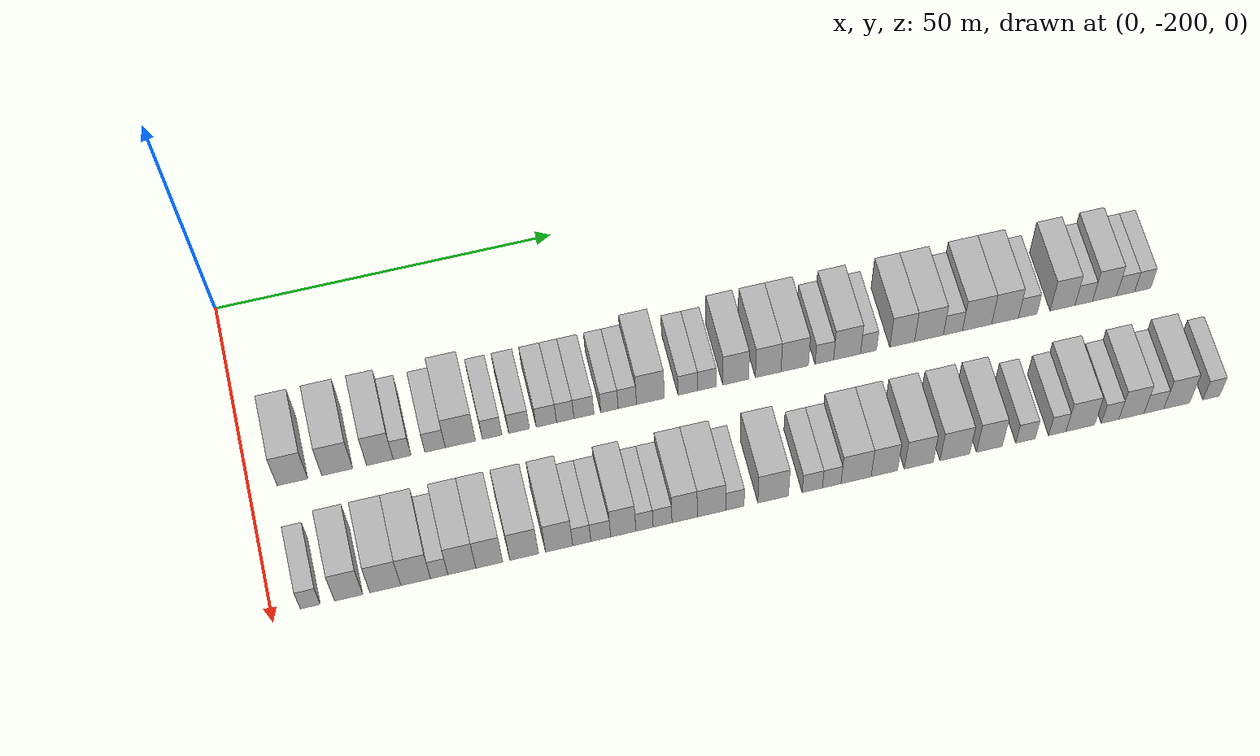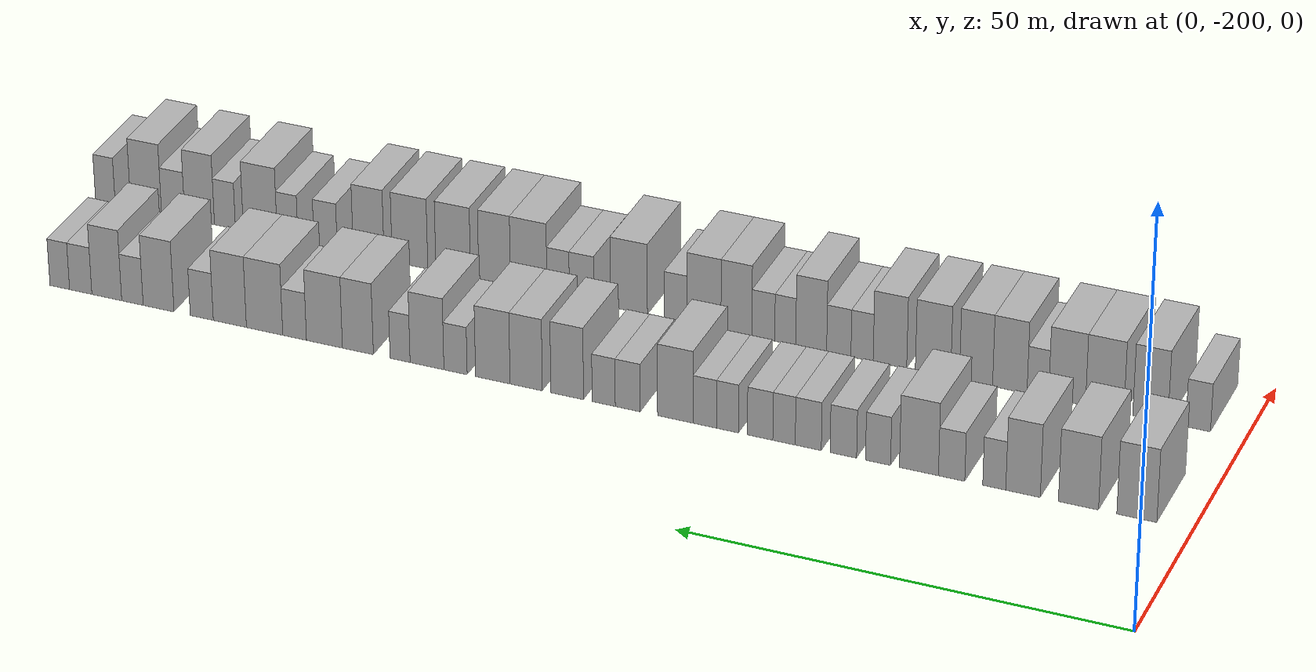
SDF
<sdf version="1.6">
 <world name="default">
  <model name="building_1">
   <static>1</static>
   <pose>25.0000 -193.8158 0 0.000000 0.000000 0.000000</pose>
   <link name="link">
    <pose>0 0 4.50 0 0 0</pose>
    <collision name="collision"><geometry><box><size>10.0000 4.3684 9.0000</size></box></geometry></collision>
    <visual name="visual">
     <cast_shadows>0</cast_shadows>
     <geometry><box><size>10.0000 4.3684 9.0000</size></box></geometry>
     <material>
      <script>
       <uri>model://HANNAS_wall/materials/scripts</uri>
       <uri>model://HANNAS_wall/materials/textures</uri>
       <name>vrc/HANNAS_wall</name>
      </script>
     </material>
    </visual>
   </link>
  </model>
  <model name="building_2">
   <static>1</static>
   <pose>25.0000 -187.4252 0 0.000000 0.000000 0.000000</pose>
   <link name="link">
    <pose>0 0 4.50 0 0 0</pose>
    <collision name="collision"><geometry><box><size>10.0000 4.4127 9.0000</size></box></geometry></collision>
    <visual name="visual">
     <cast_shadows>0</cast_shadows>
     <geometry><box><size>10.0000 4.4127 9.0000</size></box></geometry>
     <material>
      <script>
       <uri>model://HANNAS_wall/materials/scripts</uri>
       <uri>model://HANNAS_wall/materials/textures</uri>
       <name>vrc/HANNAS_wall</name>
      </script>
     </material>
    </visual>
   </link>
  </model>
  <model name="building_3">
   <static>1</static>
   <pose>25.0000 -181.3065 0 0.000000 0.000000 0.000000</pose>
   <link name="link">
    <pose>0 0 4.50 0 0 0</pose>
    <collision name="collision"><geometry><box><size>10.0000 3.8246 9.0000</size></box></geometry></collision>
    <visual name="visual">
     <cast_shadows>0</cast_shadows>
     <geometry><box><size>10.0000 3.8246 9.0000</size></box></geometry>
     <material>
      <script>
       <uri>model://HANNAS_wall/materials/scripts</uri>
       <uri>model://HANNAS_wall/materials/textures</uri>
       <name>vrc/HANNAS_wall</name>
      </script>
     </material>
    </visual>
   </link>
  </model>
  <model name="building_4">
   <static>1</static>
   <pose>25.0000 -178.1168 0 0.000000 0.000000 0.000000</pose>
   <link name="link">
    <pose>0 0 3.00 0 0 0</pose>
    <collision name="collision"><geometry><box><size>10.0000 2.5548 6.0000</size></box></geometry></collision>
    <visual name="visual">
     <cast_shadows>0</cast_shadows>
     <geometry><box><size>10.0000 2.5548 6.0000</size></box></geometry>
     <material>
      <script>
       <uri>model://HANNAS_wall/materials/scripts</uri>
       <uri>model://HANNAS_wall/materials/textures</uri>
       <name>vrc/HANNAS_wall</name>
      </script>
     </material>
    </visual>
   </link>
  </model>
  <model name="building_5">
   <static>1</static>
   <pose>25.0000 -173.3668 0 0.000000 0.000000 0.000000</pose>
   <link name="link">
    <pose>0 0 3.00 0 0 0</pose>
    <collision name="collision"><geometry><box><size>10.0000 2.9451 6.0000</size></box></geometry></collision>
    <visual name="visual">
     <cast_shadows>0</cast_shadows>
     <geometry><box><size>10.0000 2.9451 6.0000</size></box></geometry>
     <material>
      <script>
       <uri>model://HANNAS_wall/materials/scripts</uri>
       <uri>model://HANNAS_wall/materials/textures</uri>
       <name>vrc/HANNAS_wall</name>
      </script>
     </material>
    </visual>
   </link>
  </model>
  <model name="building_6">
   <static>1</static>
   <pose>25.0000 -169.7110 0 0.000000 0.000000 0.000000</pose>
   <link name="link">
    <pose>0 0 4.50 0 0 0</pose>
    <collision name="collision"><geometry><box><size>10.0000 4.3665 9.0000</size></box></geometry></collision>
    <visual name="visual">
     <cast_shadows>0</cast_shadows>
     <geometry><box><size>10.0000 4.3665 9.0000</size></box></geometry>
     <material>
      <script>
       <uri>model://HANNAS_wall/materials/scripts</uri>
       <uri>model://HANNAS_wall/materials/textures</uri>
       <name>vrc/HANNAS_wall</name>
      </script>
     </material>
    </visual>
   </link>
  </model>
  <model name="building_7">
   <static>1</static>
   <pose>25.0000 -165.1141 0 0.000000 0.000000 0.000000</pose>
   <link name="link">
    <pose>0 0 3.00 0 0 0</pose>
    <collision name="collision"><geometry><box><size>10.0000 2.8274 6.0000</size></box></geometry></collision>
    <visual name="visual">
     <cast_shadows>0</cast_shadows>
     <geometry><box><size>10.0000 2.8274 6.0000</size></box></geometry>
     <material>
      <script>
       <uri>model://HANNAS_wall/materials/scripts</uri>
       <uri>model://HANNAS_wall/materials/textures</uri>
       <name>vrc/HANNAS_wall</name>
      </script>
     </material>
    </visual>
   </link>
  </model>
  <model name="building_8">
   <static>1</static>
   <pose>25.0000 -161.2014 0 0.000000 0.000000 0.000000</pose>
   <link name="link">
    <pose>0 0 3.00 0 0 0</pose>
    <collision name="collision"><geometry><box><size>10.0000 2.9981 6.0000</size></box></geometry></collision>
    <visual name="visual">
     <cast_shadows>0</cast_shadows>
     <geometry><box><size>10.0000 2.9981 6.0000</size></box></geometry>
     <material>
      <script>
       <uri>model://HANNAS_wall/materials/scripts</uri>
       <uri>model://HANNAS_wall/materials/textures</uri>
       <name>vrc/HANNAS_wall</name>
      </script>
     </material>
    </visual>
   </link>
  </model>
  <model name="building_9">
   <static>1</static>
   <pose>25.0000 -157.2229 0 0.000000 0.000000 0.000000</pose>
   <link name="link">
    <pose>0 0 3.00 0 0 0</pose>
    <collision name="collision"><geometry><box><size>10.0000 2.9589 6.0000</size></box></geometry></collision>
    <visual name="visual">
     <cast_shadows>0</cast_shadows>
     <geometry><box><size>10.0000 2.9589 6.0000</size></box></geometry>
     <material>
      <script>
       <uri>model://HANNAS_wall/materials/scripts</uri>
       <uri>model://HANNAS_wall/materials/textures</uri>
       <name>vrc/HANNAS_wall</name>
      </script>
     </material>
    </visual>
   </link>
  </model>
  <model name="building_10">
   <static>1</static>
   <pose>25.0000 -154.4646 0 0.000000 0.000000 0.000000</pose>
   <link name="link">
    <pose>0 0 3.00 0 0 0</pose>
    <collision name="collision"><geometry><box><size>10.0000 2.5576 6.0000</size></box></geometry></collision>
    <visual name="visual">
     <cast_shadows>0</cast_shadows>
     <geometry><box><size>10.0000 2.5576 6.0000</size></box></geometry>
     <material>
      <script>
       <uri>model://HANNAS_wall/materials/scripts</uri>
       <uri>model://HANNAS_wall/materials/textures</uri>
       <name>vrc/HANNAS_wall</name>
      </script>
     </material>
    </visual>
   </link>
  </model>
  <model name="building_11">
   <static>1</static>
   <pose>25.0000 -151.7313 0 0.000000 0.000000 0.000000</pose>
   <link name="link">
    <pose>0 0 3.00 0 0 0</pose>
    <collision name="collision"><geometry><box><size>10.0000 2.9090 6.0000</size></box></geometry></collision>
    <visual name="visual">
     <cast_shadows>0</cast_shadows>
     <geometry><box><size>10.0000 2.9090 6.0000</size></box></geometry>
     <material>
      <script>
       <uri>model://HANNAS_wall/materials/scripts</uri>
       <uri>model://HANNAS_wall/materials/textures</uri>
       <name>vrc/HANNAS_wall</name>
      </script>
     </material>
    </visual>
   </link>
  </model>
  <model name="building_12">
   <static>1</static>
   <pose>25.0000 -148.0010 0 0.000000 0.000000 0.000000</pose>
   <link name="link">
    <pose>0 0 3.00 0 0 0</pose>
    <collision name="collision"><geometry><box><size>10.0000 2.5517 6.0000</size></box></geometry></collision>
    <visual name="visual">
     <cast_shadows>0</cast_shadows>
     <geometry><box><size>10.0000 2.5517 6.0000</size></box></geometry>
     <material>
      <script>
       <uri>model://HANNAS_wall/materials/scripts</uri>
       <uri>model://HANNAS_wall/materials/textures</uri>
       <name>vrc/HANNAS_wall</name>
      </script>
     </material>
    </visual>
   </link>
  </model>
  <model name="building_13">
   <static>1</static>
   <pose>25.0000 -145.3806 0 0.000000 0.000000 0.000000</pose>
   <link name="link">
    <pose>0 0 3.00 0 0 0</pose>
    <collision name="collision"><geometry><box><size>10.0000 2.6890 6.0000</size></box></geometry></collision>
    <visual name="visual">
     <cast_shadows>0</cast_shadows>
     <geometry><box><size>10.0000 2.6890 6.0000</size></box></geometry>
     <material>
      <script>
       <uri>model://HANNAS_wall/materials/scripts</uri>
       <uri>model://HANNAS_wall/materials/textures</uri>
       <name>vrc/HANNAS_wall</name>
      </script>
     </material>
    </visual>
   </link>
  </model>
  <model name="building_14">
   <static>1</static>
   <pose>25.0000 -141.9866 0 0.000000 0.000000 0.000000</pose>
   <link name="link">
    <pose>0 0 4.50 0 0 0</pose>
    <collision name="collision"><geometry><box><size>10.0000 4.0990 9.0000</size></box></geometry></collision>
    <visual name="visual">
     <cast_shadows>0</cast_shadows>
     <geometry><box><size>10.0000 4.0990 9.0000</size></box></geometry>
     <material>
      <script>
       <uri>model://HANNAS_wall/materials/scripts</uri>
       <uri>model://HANNAS_wall/materials/textures</uri>
       <name>vrc/HANNAS_wall</name>
      </script>
     </material>
    </visual>
   </link>
  </model>
  <model name="building_15">
   <static>1</static>
   <pose>25.0000 -136.4802 0 0.000000 0.000000 0.000000</pose>
   <link name="link">
    <pose>0 0 3.00 0 0 0</pose>
    <collision name="collision"><geometry><box><size>10.0000 2.9137 6.0000</size></box></geometry></collision>
    <visual name="visual">
     <cast_shadows>0</cast_shadows>
     <geometry><box><size>10.0000 2.9137 6.0000</size></box></geometry>
     <material>
      <script>
       <uri>model://HANNAS_wall/materials/scripts</uri>
       <uri>model://HANNAS_wall/materials/textures</uri>
       <name>vrc/HANNAS_wall</name>
      </script>
     </material>
    </visual>
   </link>
  </model>
  <model name="building_16">
   <static>1</static>
   <pose>25.0000 -133.6682 0 0.000000 0.000000 0.000000</pose>
   <link name="link">
    <pose>0 0 3.00 0 0 0</pose>
    <collision name="collision"><geometry><box><size>10.0000 2.7104 6.0000</size></box></geometry></collision>
    <visual name="visual">
     <cast_shadows>0</cast_shadows>
     <geometry><box><size>10.0000 2.7104 6.0000</size></box></geometry>
     <material>
      <script>
       <uri>model://HANNAS_wall/materials/scripts</uri>
       <uri>model://HANNAS_wall/materials/textures</uri>
       <name>vrc/HANNAS_wall</name>
      </script>
     </material>
    </visual>
   </link>
  </model>
  <model name="building_17">
   <static>1</static>
   <pose>25.0000 -129.4004 0 0.000000 0.000000 0.000000</pose>
   <link name="link">
    <pose>0 0 4.50 0 0 0</pose>
    <collision name="collision"><geometry><box><size>10.0000 3.8253 9.0000</size></box></geometry></collision>
    <visual name="visual">
     <cast_shadows>0</cast_shadows>
     <geometry><box><size>10.0000 3.8253 9.0000</size></box></geometry>
     <material>
      <script>
       <uri>model://HANNAS_wall/materials/scripts</uri>
       <uri>model://HANNAS_wall/materials/textures</uri>
       <name>vrc/HANNAS_wall</name>
      </script>
     </material>
    </visual>
   </link>
  </model>
  <model name="building_18">
   <static>1</static>
   <pose>25.0000 -124.5874 0 0.000000 0.000000 0.000000</pose>
   <link name="link">
    <pose>0 0 4.50 0 0 0</pose>
    <collision name="collision"><geometry><box><size>10.0000 3.8006 9.0000</size></box></geometry></collision>
    <visual name="visual">
     <cast_shadows>0</cast_shadows>
     <geometry><box><size>10.0000 3.8006 9.0000</size></box></geometry>
     <material>
      <script>
       <uri>model://HANNAS_wall/materials/scripts</uri>
       <uri>model://HANNAS_wall/materials/textures</uri>
       <name>vrc/HANNAS_wall</name>
      </script>
     </material>
    </visual>
   </link>
  </model>
  <model name="building_19">
   <static>1</static>
   <pose>25.0000 -120.6496 0 0.000000 0.000000 0.000000</pose>
   <link name="link">
    <pose>0 0 4.50 0 0 0</pose>
    <collision name="collision"><geometry><box><size>10.0000 4.0750 9.0000</size></box></geometry></collision>
    <visual name="visual">
     <cast_shadows>0</cast_shadows>
     <geometry><box><size>10.0000 4.0750 9.0000</size></box></geometry>
     <material>
      <script>
       <uri>model://HANNAS_wall/materials/scripts</uri>
       <uri>model://HANNAS_wall/materials/textures</uri>
       <name>vrc/HANNAS_wall</name>
      </script>
     </material>
    </visual>
   </link>
  </model>
  <model name="building_20">
   <static>1</static>
   <pose>25.0000 -116.2314 0 0.000000 0.000000 0.000000</pose>
   <link name="link">
    <pose>0 0 3.00 0 0 0</pose>
    <collision name="collision"><geometry><box><size>10.0000 2.7614 6.0000</size></box></geometry></collision>
    <visual name="visual">
     <cast_shadows>0</cast_shadows>
     <geometry><box><size>10.0000 2.7614 6.0000</size></box></geometry>
     <material>
      <script>
       <uri>model://HANNAS_wall/materials/scripts</uri>
       <uri>model://HANNAS_wall/materials/textures</uri>
       <name>vrc/HANNAS_wall</name>
      </script>
     </material>
    </visual>
   </link>
  </model>
  <model name="building_21">
   <static>1</static>
   <pose>25.0000 -112.8315 0 0.000000 0.000000 0.000000</pose>
   <link name="link">
    <pose>0 0 4.50 0 0 0</pose>
    <collision name="collision"><geometry><box><size>10.0000 4.0385 9.0000</size></box></geometry></collision>
    <visual name="visual">
     <cast_shadows>0</cast_shadows>
     <geometry><box><size>10.0000 4.0385 9.0000</size></box></geometry>
     <material>
      <script>
       <uri>model://HANNAS_wall/materials/scripts</uri>
       <uri>model://HANNAS_wall/materials/textures</uri>
       <name>vrc/HANNAS_wall</name>
      </script>
     </material>
    </visual>
   </link>
  </model>
  <model name="building_22">
   <static>1</static>
   <pose>25.0000 -109.6122 0 0.000000 0.000000 0.000000</pose>
   <link name="link">
    <pose>0 0 3.00 0 0 0</pose>
    <collision name="collision"><geometry><box><size>10.0000 2.4001 6.0000</size></box></geometry></collision>
    <visual name="visual">
     <cast_shadows>0</cast_shadows>
     <geometry><box><size>10.0000 2.4001 6.0000</size></box></geometry>
     <material>
      <script>
       <uri>model://HANNAS_wall/materials/scripts</uri>
       <uri>model://HANNAS_wall/materials/textures</uri>
       <name>vrc/HANNAS_wall</name>
      </script>
     </material>
    </visual>
   </link>
  </model>
  <model name="building_23">
   <static>1</static>
   <pose>25.0000 -104.5498 0 0.000000 0.000000 0.000000</pose>
   <link name="link">
    <pose>0 0 4.50 0 0 0</pose>
    <collision name="collision"><geometry><box><size>10.0000 3.7247 9.0000</size></box></geometry></collision>
    <visual name="visual">
     <cast_shadows>0</cast_shadows>
     <geometry><box><size>10.0000 3.7247 9.0000</size></box></geometry>
     <material>
      <script>
       <uri>model://HANNAS_wall/materials/scripts</uri>
       <uri>model://HANNAS_wall/materials/textures</uri>
       <name>vrc/HANNAS_wall</name>
      </script>
     </material>
    </visual>
   </link>
  </model>
  <model name="building_24">
   <static>1</static>
   <pose>25.0000 -100.5147 0 0.000000 0.000000 0.000000</pose>
   <link name="link">
    <pose>0 0 4.50 0 0 0</pose>
    <collision name="collision"><geometry><box><size>10.0000 4.3453 9.0000</size></box></geometry></collision>
    <visual name="visual">
     <cast_shadows>0</cast_shadows>
     <geometry><box><size>10.0000 4.3453 9.0000</size></box></geometry>
     <material>
      <script>
       <uri>model://HANNAS_wall/materials/scripts</uri>
       <uri>model://HANNAS_wall/materials/textures</uri>
       <name>vrc/HANNAS_wall</name>
      </script>
     </material>
    </visual>
   </link>
  </model>
  <model name="building_25">
   <static>1</static>
   <pose>25.0000 -96.9032 0 0.000000 0.000000 0.000000</pose>
   <link name="link">
    <pose>0 0 3.00 0 0 0</pose>
    <collision name="collision"><geometry><box><size>10.0000 2.8777 6.0000</size></box></geometry></collision>
    <visual name="visual">
     <cast_shadows>0</cast_shadows>
     <geometry><box><size>10.0000 2.8777 6.0000</size></box></geometry>
     <material>
      <script>
       <uri>model://HANNAS_wall/materials/scripts</uri>
       <uri>model://HANNAS_wall/materials/textures</uri>
       <name>vrc/HANNAS_wall</name>
      </script>
     </material>
    </visual>
   </link>
  </model>
  <model name="building_26">
   <static>1</static>
   <pose>25.0000 -93.2507 0 0.000000 0.000000 0.000000</pose>
   <link name="link">
    <pose>0 0 4.50 0 0 0</pose>
    <collision name="collision"><geometry><box><size>10.0000 4.4274 9.0000</size></box></geometry></collision>
    <visual name="visual">
     <cast_shadows>0</cast_shadows>
     <geometry><box><size>10.0000 4.4274 9.0000</size></box></geometry>
     <material>
      <script>
       <uri>model://HANNAS_wall/materials/scripts</uri>
       <uri>model://HANNAS_wall/materials/textures</uri>
       <name>vrc/HANNAS_wall</name>
      </script>
     </material>
    </visual>
   </link>
  </model>
  <model name="building_27">
   <static>1</static>
   <pose>25.0000 -89.0107 0 0.000000 0.000000 0.000000</pose>
   <link name="link">
    <pose>0 0 4.50 0 0 0</pose>
    <collision name="collision"><geometry><box><size>10.0000 4.0526 9.0000</size></box></geometry></collision>
    <visual name="visual">
     <cast_shadows>0</cast_shadows>
     <geometry><box><size>10.0000 4.0526 9.0000</size></box></geometry>
     <material>
      <script>
       <uri>model://HANNAS_wall/materials/scripts</uri>
       <uri>model://HANNAS_wall/materials/textures</uri>
       <name>vrc/HANNAS_wall</name>
      </script>
     </material>
    </visual>
   </link>
  </model>
  <model name="building_28">
   <static>1</static>
   <pose>25.0000 -85.5695 0 0.000000 0.000000 0.000000</pose>
   <link name="link">
    <pose>0 0 3.00 0 0 0</pose>
    <collision name="collision"><geometry><box><size>10.0000 2.8299 6.0000</size></box></geometry></collision>
    <visual name="visual">
     <cast_shadows>0</cast_shadows>
     <geometry><box><size>10.0000 2.8299 6.0000</size></box></geometry>
     <material>
      <script>
       <uri>model://HANNAS_wall/materials/scripts</uri>
       <uri>model://HANNAS_wall/materials/textures</uri>
       <name>vrc/HANNAS_wall</name>
      </script>
     </material>
    </visual>
   </link>
  </model>
  <model name="building_29">
   <static>1</static>
   <pose>25.0000 -80.2502 0 0.000000 0.000000 0.000000</pose>
   <link name="link">
    <pose>0 0 4.50 0 0 0</pose>
    <collision name="collision"><geometry><box><size>10.0000 3.8086 9.0000</size></box></geometry></collision>
    <visual name="visual">
     <cast_shadows>0</cast_shadows>
     <geometry><box><size>10.0000 3.8086 9.0000</size></box></geometry>
     <material>
      <script>
       <uri>model://HANNAS_wall/materials/scripts</uri>
       <uri>model://HANNAS_wall/materials/textures</uri>
       <name>vrc/HANNAS_wall</name>
      </script>
     </material>
    </visual>
   </link>
  </model>
  <model name="building_30">
   <static>1</static>
   <pose>25.0000 -77.0159 0 0.000000 0.000000 0.000000</pose>
   <link name="link">
    <pose>0 0 3.00 0 0 0</pose>
    <collision name="collision"><geometry><box><size>10.0000 2.6602 6.0000</size></box></geometry></collision>
    <visual name="visual">
     <cast_shadows>0</cast_shadows>
     <geometry><box><size>10.0000 2.6602 6.0000</size></box></geometry>
     <material>
      <script>
       <uri>model://HANNAS_wall/materials/scripts</uri>
       <uri>model://HANNAS_wall/materials/textures</uri>
       <name>vrc/HANNAS_wall</name>
      </script>
     </material>
    </visual>
   </link>
  </model>
  <model name="building_31">
   <static>1</static>
   <pose>25.0000 -73.8317 0 0.000000 0.000000 0.000000</pose>
   <link name="link">
    <pose>0 0 4.50 0 0 0</pose>
    <collision name="collision"><geometry><box><size>10.0000 3.7082 9.0000</size></box></geometry></collision>
    <visual name="visual">
     <cast_shadows>0</cast_shadows>
     <geometry><box><size>10.0000 3.7082 9.0000</size></box></geometry>
     <material>
      <script>
       <uri>model://HANNAS_wall/materials/scripts</uri>
       <uri>model://HANNAS_wall/materials/textures</uri>
       <name>vrc/HANNAS_wall</name>
      </script>
     </material>
    </visual>
   </link>
  </model>
  <model name="building_32">
   <static>1</static>
   <pose>25.0000 -70.5869 0 0.000000 0.000000 0.000000</pose>
   <link name="link">
    <pose>0 0 3.00 0 0 0</pose>
    <collision name="collision"><geometry><box><size>10.0000 2.7813 6.0000</size></box></geometry></collision>
    <visual name="visual">
     <cast_shadows>0</cast_shadows>
     <geometry><box><size>10.0000 2.7813 6.0000</size></box></geometry>
     <material>
      <script>
       <uri>model://HANNAS_wall/materials/scripts</uri>
       <uri>model://HANNAS_wall/materials/textures</uri>
       <name>vrc/HANNAS_wall</name>
      </script>
     </material>
    </visual>
   </link>
  </model>
  <model name="building_33">
   <static>1</static>
   <pose>25.0000 -67.9731 0 0.000000 0.000000 0.000000</pose>
   <link name="link">
    <pose>0 0 3.00 0 0 0</pose>
    <collision name="collision"><geometry><box><size>10.0000 2.4463 6.0000</size></box></geometry></collision>
    <visual name="visual">
     <cast_shadows>0</cast_shadows>
     <geometry><box><size>10.0000 2.4463 6.0000</size></box></geometry>
     <material>
      <script>
       <uri>model://HANNAS_wall/materials/scripts</uri>
       <uri>model://HANNAS_wall/materials/textures</uri>
       <name>vrc/HANNAS_wall</name>
      </script>
     </material>
    </visual>
   </link>
  </model>
  <model name="building_99">
   <static>1</static>
   <pose>44.0000 -194.6192 0 0.000000 0.000000 0.000000</pose>
   <link name="link">
    <pose>0 0 3.00 0 0 0</pose>
    <collision name="collision"><geometry><box><size>10.0000 2.7616 6.0000</size></box></geometry></collision>
    <visual name="visual">
     <cast_shadows>0</cast_shadows>
     <geometry><box><size>10.0000 2.7616 6.0000</size></box></geometry>
     <material>
      <script>
       <uri>model://HANNAS_wall/materials/scripts</uri>
       <uri>model://HANNAS_wall/materials/textures</uri>
       <name>vrc/HANNAS_wall</name>
      </script>
     </material>
    </visual>
   </link>
  </model>
  <model name="building_100">
   <static>1</static>
   <pose>44.0000 -189.2688 0 0.000000 0.000000 0.000000</pose>
   <link name="link">
    <pose>0 0 4.50 0 0 0</pose>
    <collision name="collision"><geometry><box><size>10.0000 3.9391 9.0000</size></box></geometry></collision>
    <visual name="visual">
     <cast_shadows>0</cast_shadows>
     <geometry><box><size>10.0000 3.9391 9.0000</size></box></geometry>
     <material>
      <script>
       <uri>model://HANNAS_wall/materials/scripts</uri>
       <uri>model://HANNAS_wall/materials/textures</uri>
       <name>vrc/HANNAS_wall</name>
      </script>
     </material>
    </visual>
   </link>
  </model>
  <model name="building_101">
   <static>1</static>
   <pose>44.0000 -184.1315 0 0.000000 0.000000 0.000000</pose>
   <link name="link">
    <pose>0 0 4.50 0 0 0</pose>
    <collision name="collision"><geometry><box><size>10.0000 4.3356 9.0000</size></box></geometry></collision>
    <visual name="visual">
     <cast_shadows>0</cast_shadows>
     <geometry><box><size>10.0000 4.3356 9.0000</size></box></geometry>
     <material>
      <script>
       <uri>model://HANNAS_wall/materials/scripts</uri>
       <uri>model://HANNAS_wall/materials/textures</uri>
       <name>vrc/HANNAS_wall</name>
      </script>
     </material>
    </visual>
   </link>
  </model>
  <model name="building_102">
   <static>1</static>
   <pose>44.0000 -179.8727 0 0.000000 0.000000 0.000000</pose>
   <link name="link">
    <pose>0 0 4.50 0 0 0</pose>
    <collision name="collision"><geometry><box><size>10.0000 4.1820 9.0000</size></box></geometry></collision>
    <visual name="visual">
     <cast_shadows>0</cast_shadows>
     <geometry><box><size>10.0000 4.1820 9.0000</size></box></geometry>
     <material>
      <script>
       <uri>model://HANNAS_wall/materials/scripts</uri>
       <uri>model://HANNAS_wall/materials/textures</uri>
       <name>vrc/HANNAS_wall</name>
      </script>
     </material>
    </visual>
   </link>
  </model>
  <model name="building_103">
   <static>1</static>
   <pose>44.0000 -176.5561 0 0.000000 0.000000 0.000000</pose>
   <link name="link">
    <pose>0 0 3.00 0 0 0</pose>
    <collision name="collision"><geometry><box><size>10.0000 2.4511 6.0000</size></box></geometry></collision>
    <visual name="visual">
     <cast_shadows>0</cast_shadows>
     <geometry><box><size>10.0000 2.4511 6.0000</size></box></geometry>
     <material>
      <script>
       <uri>model://HANNAS_wall/materials/scripts</uri>
       <uri>model://HANNAS_wall/materials/textures</uri>
       <name>vrc/HANNAS_wall</name>
      </script>
     </material>
    </visual>
   </link>
  </model>
  <model name="building_104">
   <static>1</static>
   <pose>44.0000 -173.3631 0 0.000000 0.000000 0.000000</pose>
   <link name="link">
    <pose>0 0 4.50 0 0 0</pose>
    <collision name="collision"><geometry><box><size>10.0000 3.9349 9.0000</size></box></geometry></collision>
    <visual name="visual">
     <cast_shadows>0</cast_shadows>
     <geometry><box><size>10.0000 3.9349 9.0000</size></box></geometry>
     <material>
      <script>
       <uri>model://HANNAS_wall/materials/scripts</uri>
       <uri>model://HANNAS_wall/materials/textures</uri>
       <name>vrc/HANNAS_wall</name>
      </script>
     </material>
    </visual>
   </link>
  </model>
  <model name="building_105">
   <static>1</static>
   <pose>44.0000 -169.4930 0 0.000000 0.000000 0.000000</pose>
   <link name="link">
    <pose>0 0 4.50 0 0 0</pose>
    <collision name="collision"><geometry><box><size>10.0000 3.8055 9.0000</size></box></geometry></collision>
    <visual name="visual">
     <cast_shadows>0</cast_shadows>
     <geometry><box><size>10.0000 3.8055 9.0000</size></box></geometry>
     <material>
      <script>
       <uri>model://HANNAS_wall/materials/scripts</uri>
       <uri>model://HANNAS_wall/materials/textures</uri>
       <name>vrc/HANNAS_wall</name>
      </script>
     </material>
    </visual>
   </link>
  </model>
  <model name="building_106">
   <static>1</static>
   <pose>44.0000 -164.5534 0 0.000000 0.000000 0.000000</pose>
   <link name="link">
    <pose>0 0 4.50 0 0 0</pose>
    <collision name="collision"><geometry><box><size>10.0000 4.0736 9.0000</size></box></geometry></collision>
    <visual name="visual">
     <cast_shadows>0</cast_shadows>
     <geometry><box><size>10.0000 4.0736 9.0000</size></box></geometry>
     <material>
      <script>
       <uri>model://HANNAS_wall/materials/scripts</uri>
       <uri>model://HANNAS_wall/materials/textures</uri>
       <name>vrc/HANNAS_wall</name>
      </script>
     </material>
    </visual>
   </link>
  </model>
  <model name="building_107">
   <static>1</static>
   <pose>44.0000 -159.5741 0 0.000000 0.000000 0.000000</pose>
   <link name="link">
    <pose>0 0 4.50 0 0 0</pose>
    <collision name="collision"><geometry><box><size>10.0000 3.8849 9.0000</size></box></geometry></collision>
    <visual name="visual">
     <cast_shadows>0</cast_shadows>
     <geometry><box><size>10.0000 3.8849 9.0000</size></box></geometry>
     <material>
      <script>
       <uri>model://HANNAS_wall/materials/scripts</uri>
       <uri>model://HANNAS_wall/materials/textures</uri>
       <name>vrc/HANNAS_wall</name>
      </script>
     </material>
    </visual>
   </link>
  </model>
  <model name="building_108">
   <static>1</static>
   <pose>44.0000 -156.3396 0 0.000000 0.000000 0.000000</pose>
   <link name="link">
    <pose>0 0 3.00 0 0 0</pose>
    <collision name="collision"><geometry><box><size>10.0000 2.5842 6.0000</size></box></geometry></collision>
    <visual name="visual">
     <cast_shadows>0</cast_shadows>
     <geometry><box><size>10.0000 2.5842 6.0000</size></box></geometry>
     <material>
      <script>
       <uri>model://HANNAS_wall/materials/scripts</uri>
       <uri>model://HANNAS_wall/materials/textures</uri>
       <name>vrc/HANNAS_wall</name>
      </script>
     </material>
    </visual>
   </link>
  </model>
  <model name="building_109">
   <static>1</static>
   <pose>44.0000 -153.6319 0 0.000000 0.000000 0.000000</pose>
   <link name="link">
    <pose>0 0 3.00 0 0 0</pose>
    <collision name="collision"><geometry><box><size>10.0000 2.8313 6.0000</size></box></geometry></collision>
    <visual name="visual">
     <cast_shadows>0</cast_shadows>
     <geometry><box><size>10.0000 2.8313 6.0000</size></box></geometry>
     <material>
      <script>
       <uri>model://HANNAS_wall/materials/scripts</uri>
       <uri>model://HANNAS_wall/materials/textures</uri>
       <name>vrc/HANNAS_wall</name>
      </script>
     </material>
    </visual>
   </link>
  </model>
  <model name="building_110">
   <static>1</static>
   <pose>44.0000 -150.4083 0 0.000000 0.000000 0.000000</pose>
   <link name="link">
    <pose>0 0 4.50 0 0 0</pose>
    <collision name="collision"><geometry><box><size>10.0000 3.6159 9.0000</size></box></geometry></collision>
    <visual name="visual">
     <cast_shadows>0</cast_shadows>
     <geometry><box><size>10.0000 3.6159 9.0000</size></box></geometry>
     <material>
      <script>
       <uri>model://HANNAS_wall/materials/scripts</uri>
       <uri>model://HANNAS_wall/materials/textures</uri>
       <name>vrc/HANNAS_wall</name>
      </script>
     </material>
    </visual>
   </link>
  </model>
  <model name="building_111">
   <static>1</static>
   <pose>44.0000 -147.3682 0 0.000000 0.000000 0.000000</pose>
   <link name="link">
    <pose>0 0 3.00 0 0 0</pose>
    <collision name="collision"><geometry><box><size>10.0000 2.4643 6.0000</size></box></geometry></collision>
    <visual name="visual">
     <cast_shadows>0</cast_shadows>
     <geometry><box><size>10.0000 2.4643 6.0000</size></box></geometry>
     <material>
      <script>
       <uri>model://HANNAS_wall/materials/scripts</uri>
       <uri>model://HANNAS_wall/materials/textures</uri>
       <name>vrc/HANNAS_wall</name>
      </script>
     </material>
    </visual>
   </link>
  </model>
  <model name="building_112">
   <static>1</static>
   <pose>44.0000 -144.7877 0 0.000000 0.000000 0.000000</pose>
   <link name="link">
    <pose>0 0 3.00 0 0 0</pose>
    <collision name="collision"><geometry><box><size>10.0000 2.6968 6.0000</size></box></geometry></collision>
    <visual name="visual">
     <cast_shadows>0</cast_shadows>
     <geometry><box><size>10.0000 2.6968 6.0000</size></box></geometry>
     <material>
      <script>
       <uri>model://HANNAS_wall/materials/scripts</uri>
       <uri>model://HANNAS_wall/materials/textures</uri>
       <name>vrc/HANNAS_wall</name>
      </script>
     </material>
    </visual>
   </link>
  </model>
  <model name="building_113">
   <static>1</static>
   <pose>44.0000 -141.6144 0 0.000000 0.000000 0.000000</pose>
   <link name="link">
    <pose>0 0 4.50 0 0 0</pose>
    <collision name="collision"><geometry><box><size>10.0000 3.6499 9.0000</size></box></geometry></collision>
    <visual name="visual">
     <cast_shadows>0</cast_shadows>
     <geometry><box><size>10.0000 3.6499 9.0000</size></box></geometry>
     <material>
      <script>
       <uri>model://HANNAS_wall/materials/scripts</uri>
       <uri>model://HANNAS_wall/materials/textures</uri>
       <name>vrc/HANNAS_wall</name>
      </script>
     </material>
    </visual>
   </link>
  </model>
  <model name="building_114">
   <static>1</static>
   <pose>44.0000 -137.7563 0 0.000000 0.000000 0.000000</pose>
   <link name="link">
    <pose>0 0 4.50 0 0 0</pose>
    <collision name="collision"><geometry><box><size>10.0000 4.0663 9.0000</size></box></geometry></collision>
    <visual name="visual">
     <cast_shadows>0</cast_shadows>
     <geometry><box><size>10.0000 4.0663 9.0000</size></box></geometry>
     <material>
      <script>
       <uri>model://HANNAS_wall/materials/scripts</uri>
       <uri>model://HANNAS_wall/materials/textures</uri>
       <name>vrc/HANNAS_wall</name>
      </script>
     </material>
    </visual>
   </link>
  </model>
  <model name="building_115">
   <static>1</static>
   <pose>44.0000 -134.3858 0 0.000000 0.000000 0.000000</pose>
   <link name="link">
    <pose>0 0 3.00 0 0 0</pose>
    <collision name="collision"><geometry><box><size>10.0000 2.6746 6.0000</size></box></geometry></collision>
    <visual name="visual">
     <cast_shadows>0</cast_shadows>
     <geometry><box><size>10.0000 2.6746 6.0000</size></box></geometry>
     <material>
      <script>
       <uri>model://HANNAS_wall/materials/scripts</uri>
       <uri>model://HANNAS_wall/materials/textures</uri>
       <name>vrc/HANNAS_wall</name>
      </script>
     </material>
    </visual>
   </link>
  </model>
  <model name="building_116">
   <static>1</static>
   <pose>44.0000 -128.8311 0 0.000000 0.000000 0.000000</pose>
   <link name="link">
    <pose>0 0 4.50 0 0 0</pose>
    <collision name="collision"><geometry><box><size>10.0000 4.4349 9.0000</size></box></geometry></collision>
    <visual name="visual">
     <cast_shadows>0</cast_shadows>
     <geometry><box><size>10.0000 4.4349 9.0000</size></box></geometry>
     <material>
      <script>
       <uri>model://HANNAS_wall/materials/scripts</uri>
       <uri>model://HANNAS_wall/materials/textures</uri>
       <name>vrc/HANNAS_wall</name>
      </script>
     </material>
    </visual>
   </link>
  </model>
  <model name="building_117">
   <static>1</static>
   <pose>44.0000 -123.1454 0 0.000000 0.000000 0.000000</pose>
   <link name="link">
    <pose>0 0 3.00 0 0 0</pose>
    <collision name="collision"><geometry><box><size>10.0000 2.9364 6.0000</size></box></geometry></collision>
    <visual name="visual">
     <cast_shadows>0</cast_shadows>
     <geometry><box><size>10.0000 2.9364 6.0000</size></box></geometry>
     <material>
      <script>
       <uri>model://HANNAS_wall/materials/scripts</uri>
       <uri>model://HANNAS_wall/materials/textures</uri>
       <name>vrc/HANNAS_wall</name>
      </script>
     </material>
    </visual>
   </link>
  </model>
  <model name="building_118">
   <static>1</static>
   <pose>44.0000 -120.3227 0 0.000000 0.000000 0.000000</pose>
   <link name="link">
    <pose>0 0 3.00 0 0 0</pose>
    <collision name="collision"><geometry><box><size>10.0000 2.7090 6.0000</size></box></geometry></collision>
    <visual name="visual">
     <cast_shadows>0</cast_shadows>
     <geometry><box><size>10.0000 2.7090 6.0000</size></box></geometry>
     <material>
      <script>
       <uri>model://HANNAS_wall/materials/scripts</uri>
       <uri>model://HANNAS_wall/materials/textures</uri>
       <name>vrc/HANNAS_wall</name>
      </script>
     </material>
    </visual>
   </link>
  </model>
  <model name="building_119">
   <static>1</static>
   <pose>44.0000 -116.7604 0 0.000000 0.000000 0.000000</pose>
   <link name="link">
    <pose>0 0 4.50 0 0 0</pose>
    <collision name="collision"><geometry><box><size>10.0000 4.4156 9.0000</size></box></geometry></collision>
    <visual name="visual">
     <cast_shadows>0</cast_shadows>
     <geometry><box><size>10.0000 4.4156 9.0000</size></box></geometry>
     <material>
      <script>
       <uri>model://HANNAS_wall/materials/scripts</uri>
       <uri>model://HANNAS_wall/materials/textures</uri>
       <name>vrc/HANNAS_wall</name>
      </script>
     </material>
    </visual>
   </link>
  </model>
  <model name="building_120">
   <static>1</static>
   <pose>44.0000 -112.6232 0 0.000000 0.000000 0.000000</pose>
   <link name="link">
    <pose>0 0 4.50 0 0 0</pose>
    <collision name="collision"><geometry><box><size>10.0000 3.8589 9.0000</size></box></geometry></collision>
    <visual name="visual">
     <cast_shadows>0</cast_shadows>
     <geometry><box><size>10.0000 3.8589 9.0000</size></box></geometry>
     <material>
      <script>
       <uri>model://HANNAS_wall/materials/scripts</uri>
       <uri>model://HANNAS_wall/materials/textures</uri>
       <name>vrc/HANNAS_wall</name>
      </script>
     </material>
    </visual>
   </link>
  </model>
  <model name="building_121">
   <static>1</static>
   <pose>44.0000 -107.5707 0 0.000000 0.000000 0.000000</pose>
   <link name="link">
    <pose>0 0 4.50 0 0 0</pose>
    <collision name="collision"><geometry><box><size>10.0000 4.2460 9.0000</size></box></geometry></collision>
    <visual name="visual">
     <cast_shadows>0</cast_shadows>
     <geometry><box><size>10.0000 4.2460 9.0000</size></box></geometry>
     <material>
      <script>
       <uri>model://HANNAS_wall/materials/scripts</uri>
       <uri>model://HANNAS_wall/materials/textures</uri>
       <name>vrc/HANNAS_wall</name>
      </script>
     </material>
    </visual>
   </link>
  </model>
  <model name="building_122">
   <static>1</static>
   <pose>44.0000 -102.2572 0 0.000000 0.000000 0.000000</pose>
   <link name="link">
    <pose>0 0 4.50 0 0 0</pose>
    <collision name="collision"><geometry><box><size>10.0000 4.3808 9.0000</size></box></geometry></collision>
    <visual name="visual">
     <cast_shadows>0</cast_shadows>
     <geometry><box><size>10.0000 4.3808 9.0000</size></box></geometry>
     <material>
      <script>
       <uri>model://HANNAS_wall/materials/scripts</uri>
       <uri>model://HANNAS_wall/materials/textures</uri>
       <name>vrc/HANNAS_wall</name>
      </script>
     </material>
    </visual>
   </link>
  </model>
  <model name="building_123">
   <static>1</static>
   <pose>44.0000 -97.1590 0 0.000000 0.000000 0.000000</pose>
   <link name="link">
    <pose>0 0 4.50 0 0 0</pose>
    <collision name="collision"><geometry><box><size>10.0000 3.8157 9.0000</size></box></geometry></collision>
    <visual name="visual">
     <cast_shadows>0</cast_shadows>
     <geometry><box><size>10.0000 3.8157 9.0000</size></box></geometry>
     <material>
      <script>
       <uri>model://HANNAS_wall/materials/scripts</uri>
       <uri>model://HANNAS_wall/materials/textures</uri>
       <name>vrc/HANNAS_wall</name>
      </script>
     </material>
    </visual>
   </link>
  </model>
  <model name="building_124">
   <static>1</static>
   <pose>44.0000 -91.8105 0 0.000000 0.000000 0.000000</pose>
   <link name="link">
    <pose>0 0 3.00 0 0 0</pose>
    <collision name="collision"><geometry><box><size>10.0000 2.8812 6.0000</size></box></geometry></collision>
    <visual name="visual">
     <cast_shadows>0</cast_shadows>
     <geometry><box><size>10.0000 2.8812 6.0000</size></box></geometry>
     <material>
      <script>
       <uri>model://HANNAS_wall/materials/scripts</uri>
       <uri>model://HANNAS_wall/materials/textures</uri>
       <name>vrc/HANNAS_wall</name>
      </script>
     </material>
    </visual>
   </link>
  </model>
  <model name="building_125">
   <static>1</static>
   <pose>44.0000 -87.0695 0 0.000000 0.000000 0.000000</pose>
   <link name="link">
    <pose>0 0 3.00 0 0 0</pose>
    <collision name="collision"><geometry><box><size>10.0000 2.6009 6.0000</size></box></geometry></collision>
    <visual name="visual">
     <cast_shadows>0</cast_shadows>
     <geometry><box><size>10.0000 2.6009 6.0000</size></box></geometry>
     <material>
      <script>
       <uri>model://HANNAS_wall/materials/scripts</uri>
       <uri>model://HANNAS_wall/materials/textures</uri>
       <name>vrc/HANNAS_wall</name>
      </script>
     </material>
    </visual>
   </link>
  </model>
  <model name="building_126">
   <static>1</static>
   <pose>44.0000 -83.6428 0 0.000000 0.000000 0.000000</pose>
   <link name="link">
    <pose>0 0 4.50 0 0 0</pose>
    <collision name="collision"><geometry><box><size>10.0000 4.2525 9.0000</size></box></geometry></collision>
    <visual name="visual">
     <cast_shadows>0</cast_shadows>
     <geometry><box><size>10.0000 4.2525 9.0000</size></box></geometry>
     <material>
      <script>
       <uri>model://HANNAS_wall/materials/scripts</uri>
       <uri>model://HANNAS_wall/materials/textures</uri>
       <name>vrc/HANNAS_wall</name>
      </script>
     </material>
    </visual>
   </link>
  </model>
  <model name="building_127">
   <static>1</static>
   <pose>44.0000 -79.1950 0 0.000000 0.000000 0.000000</pose>
   <link name="link">
    <pose>0 0 3.00 0 0 0</pose>
    <collision name="collision"><geometry><box><size>10.0000 2.6430 6.0000</size></box></geometry></collision>
    <visual name="visual">
     <cast_shadows>0</cast_shadows>
     <geometry><box><size>10.0000 2.6430 6.0000</size></box></geometry>
     <material>
      <script>
       <uri>model://HANNAS_wall/materials/scripts</uri>
       <uri>model://HANNAS_wall/materials/textures</uri>
       <name>vrc/HANNAS_wall</name>
      </script>
     </material>
    </visual>
   </link>
  </model>
  <model name="building_128">
   <static>1</static>
   <pose>44.0000 -75.9974 0 0.000000 0.000000 0.000000</pose>
   <link name="link">
    <pose>0 0 4.50 0 0 0</pose>
    <collision name="collision"><geometry><box><size>10.0000 3.7522 9.0000</size></box></geometry></collision>
    <visual name="visual">
     <cast_shadows>0</cast_shadows>
     <geometry><box><size>10.0000 3.7522 9.0000</size></box></geometry>
     <material>
      <script>
       <uri>model://HANNAS_wall/materials/scripts</uri>
       <uri>model://HANNAS_wall/materials/textures</uri>
       <name>vrc/HANNAS_wall</name>
      </script>
     </material>
    </visual>
   </link>
  </model>
  <model name="building_129">
   <static>1</static>
   <pose>44.0000 -72.6428 0 0.000000 0.000000 0.000000</pose>
   <link name="link">
    <pose>0 0 3.00 0 0 0</pose>
    <collision name="collision"><geometry><box><size>10.0000 2.9570 6.0000</size></box></geometry></collision>
    <visual name="visual">
     <cast_shadows>0</cast_shadows>
     <geometry><box><size>10.0000 2.9570 6.0000</size></box></geometry>
     <material>
      <script>
       <uri>model://HANNAS_wall/materials/scripts</uri>
       <uri>model://HANNAS_wall/materials/textures</uri>
       <name>vrc/HANNAS_wall</name>
      </script>
     </material>
    </visual>
   </link>
  </model>
  <model name="building_130">
   <static>1</static>
   <pose>44.0000 -69.2072 0 0.000000 0.000000 0.000000</pose>
   <link name="link">
    <pose>0 0 4.50 0 0 0</pose>
    <collision name="collision"><geometry><box><size>10.0000 3.9142 9.0000</size></box></geometry></collision>
    <visual name="visual">
     <cast_shadows>0</cast_shadows>
     <geometry><box><size>10.0000 3.9142 9.0000</size></box></geometry>
     <material>
      <script>
       <uri>model://HANNAS_wall/materials/scripts</uri>
       <uri>model://HANNAS_wall/materials/textures</uri>
       <name>vrc/HANNAS_wall</name>
      </script>
     </material>
    </visual>
   </link>
  </model>
  <model name="building_131">
   <static>1</static>
   <pose>44.0000 -63.9961 0 0.000000 0.000000 0.000000</pose>
   <link name="link">
    <pose>0 0 3.00 0 0 0</pose>
    <collision name="collision"><geometry><box><size>10.0000 2.5080 6.0000</size></box></geometry></collision>
    <visual name="visual">
     <cast_shadows>0</cast_shadows>
     <geometry><box><size>10.0000 2.5080 6.0000</size></box></geometry>
     <material>
      <script>
       <uri>model://HANNAS_wall/materials/scripts</uri>
       <uri>model://HANNAS_wall/materials/textures</uri>
       <name>vrc/HANNAS_wall</name>
      </script>
     </material>
    </visual>
   </link>
  </model>
 </world>
</sdf>
